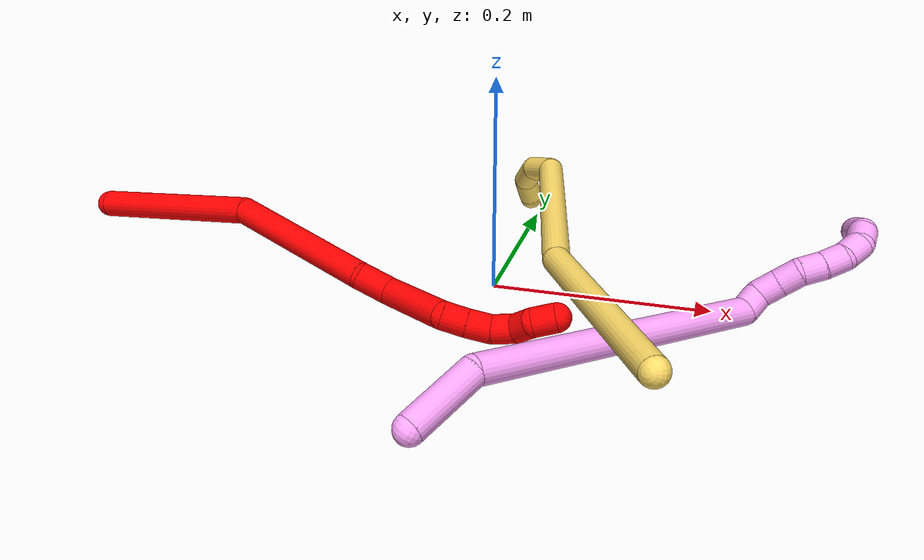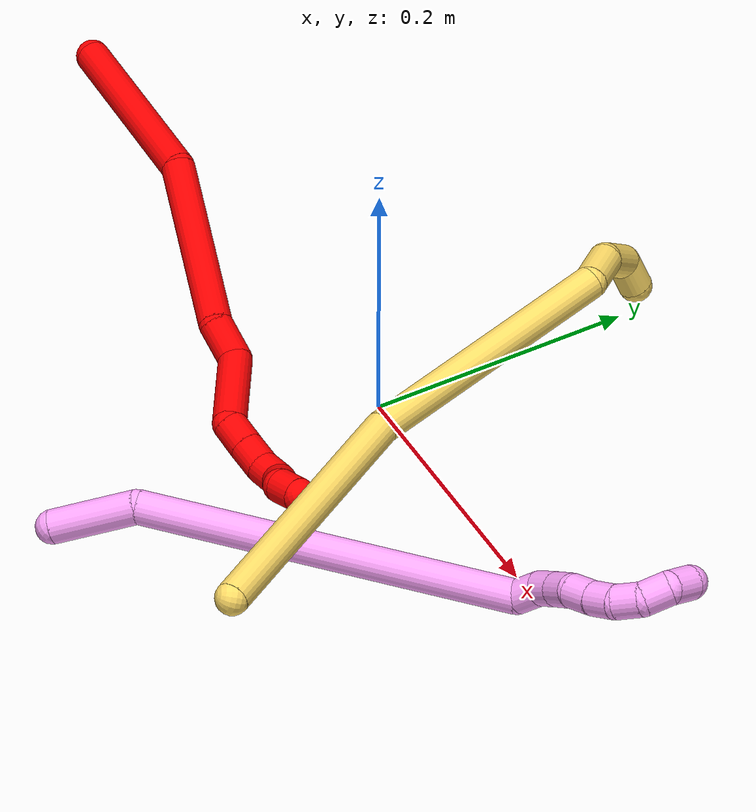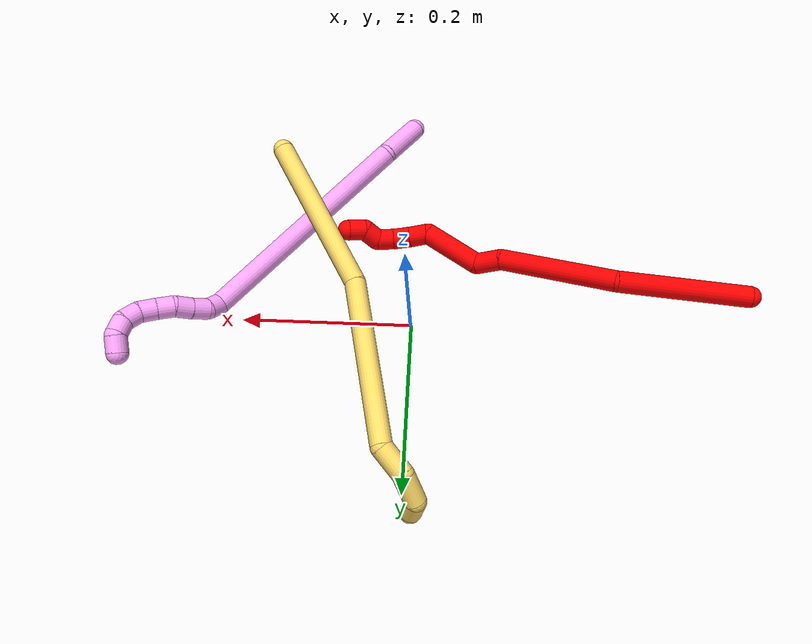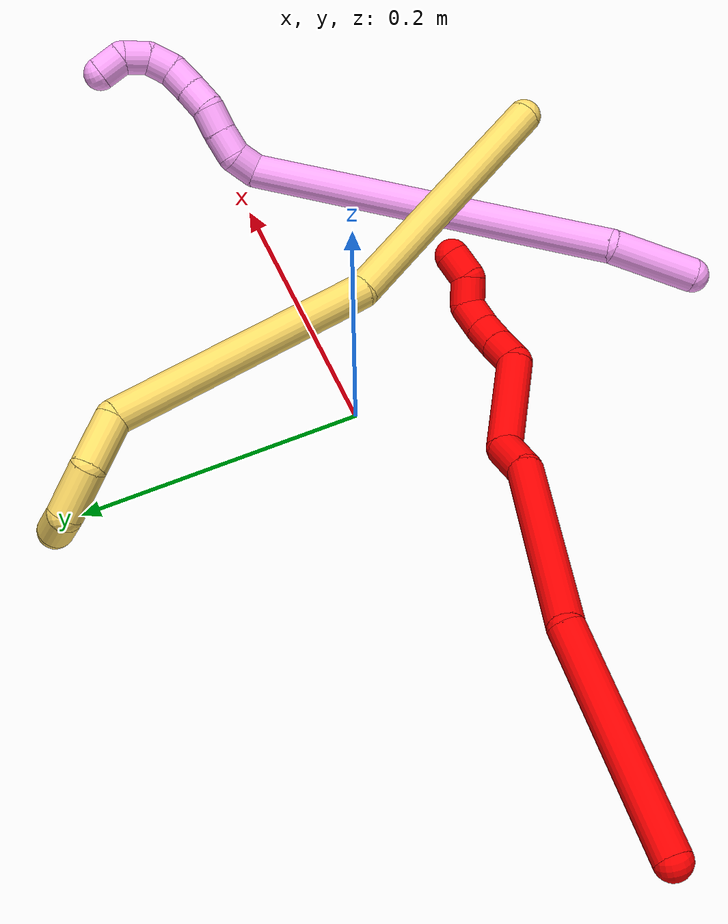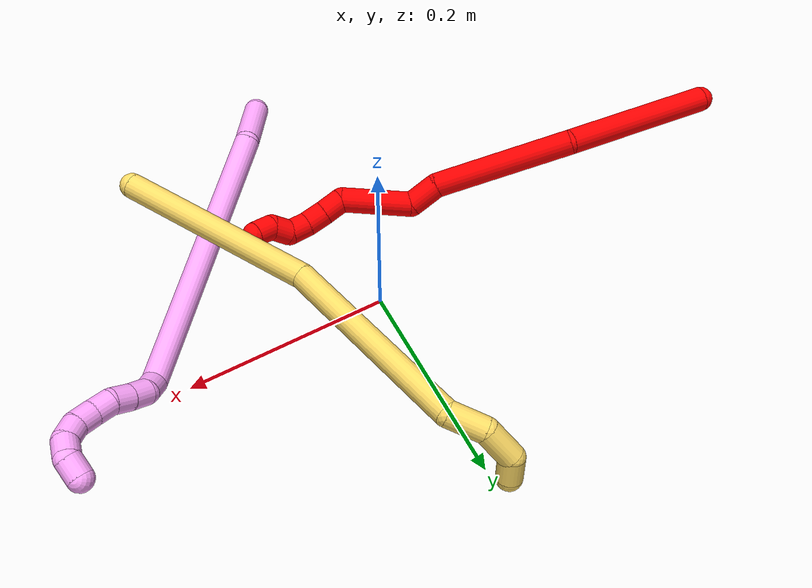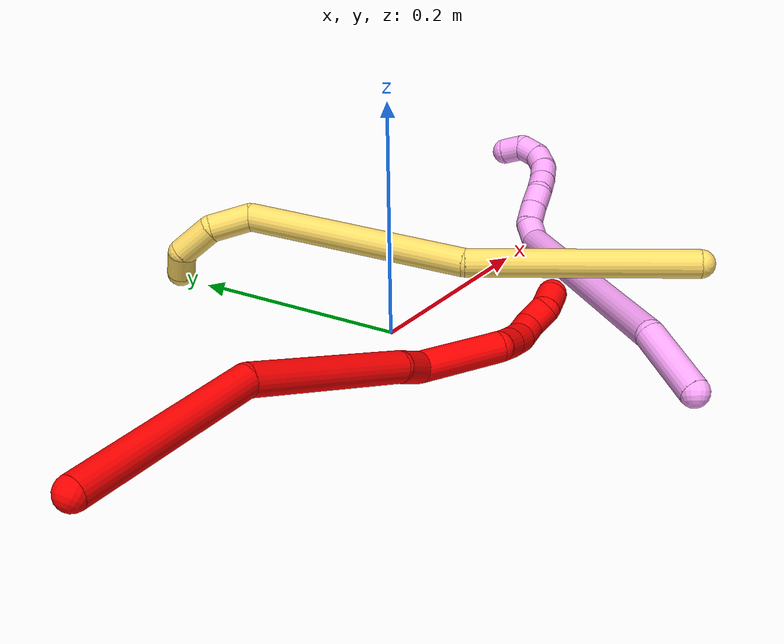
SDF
<sdf version="1.7">
 <world name="default">
  <model name="photoneo_s_sensor">
   <static>1</static>
   <pose>0 0 2 1.57079 1.57079 3.14159</pose>
   <link name="link">
    <inertial><mass>0.1</mass></inertial>
    <sensor name="sensor" type="depth">
     <update_rate>30</update_rate>
     <camera>
      <horizontal_fov>1.22</horizontal_fov>
      <image><width>1920</width><height>1200</height><format>B8G8R8</format></image>
      <clip><near>0.1</near><far>4</far></clip>
      <depth_camera><output>points</output></depth_camera>
     </camera>
     <plugin name="camera_plugin" filename="libgazebo_ros_depth_camera.so">
      <baseline>0.2</baseline>
      <alwaysOn>1</alwaysOn>
      <updateRate>0.0</updateRate>
      <cameraName>camera_ir</cameraName>
      <imageTopicName>/camera/color/image_raw</imageTopicName>
      <cameraInfoTopicName>/camera/color/camera_info</cameraInfoTopicName>
      <depthImageTopicName>/camera/depth/image_raw</depthImageTopicName>
      <depthImageCameraInfoTopicName>/camera/depth/camera_info</depthImageCameraInfoTopicName>
      <pointCloudTopicName>/camera/depth/points</pointCloudTopicName>
      <frameName>fr_optical</frameName>
      <pointCloudCutoff>0.1</pointCloudCutoff>
      <pointCloudCutoffMax>2.0</pointCloudCutoffMax>
      <distortionK1>0</distortionK1>
      <distortionK2>0</distortionK2>
      <distortionK3>0</distortionK3>
      <distortionT1>0</distortionT1>
      <distortionT2>0</distortionT2>
      <CxPrime>0</CxPrime>
      <Cx>0</Cx>
      <Cy>0</Cy>
      <focalLength>0</focalLength>
      <hackBaseline>0</hackBaseline>
     </plugin>
    </sensor>
   </link>
  </model>
  <model name="bin">
   <static>1</static>
   <link name="bottom">
    <collision name="collision-bottom">
     <pose>0 0 -0.01 0 -0 0</pose>
     <geometry><box><size>0.8 0.6 0.02</size></box></geometry>
     <surface>
      <friction><ode><mu>100</mu><mu2>100</mu2></ode></friction>
      <contact><collide_bitmask>65535</collide_bitmask></contact>
     </surface>
    </collision>
   </link>
   <link name="west_wall">
    <collision name="collision-west_wall">
     <pose>-0.41 0 0.1 0 -0 0</pose>
     <geometry><box><size>0.02 0.6 0.2</size></box></geometry>
     <surface>
      <friction><ode><mu>100</mu><mu2>100</mu2></ode></friction>
      <contact><collide_bitmask>65535</collide_bitmask></contact>
     </surface>
    </collision>
   </link>
   <link name="east_wall">
    <collision name="collision-east_wall">
     <pose>0.41 0 0.1 0 -0 0</pose>
     <geometry><box><size>0.02 0.6 0.2</size></box></geometry>
     <surface>
      <friction><ode><mu>100</mu><mu2>100</mu2></ode></friction>
      <contact><collide_bitmask>65535</collide_bitmask></contact>
     </surface>
    </collision>
   </link>
   <link name="south_wall">
    <collision name="collision-south_wall">
     <pose>0 -0.31 0.1 0 -0 0</pose>
     <geometry><box><size>0.8 0.02 0.2</size></box></geometry>
     <surface>
      <friction><ode><mu>100</mu><mu2>100</mu2></ode></friction>
      <contact><collide_bitmask>65535</collide_bitmask></contact>
     </surface>
    </collision>
   </link>
   <link name="north_wall">
    <collision name="collision-north_wall">
     <pose>0 0.31 0.1 0 -0 0</pose>
     <geometry><box><size>0.8 0.02 0.2</size></box></geometry>
     <surface>
      <friction><ode><mu>100</mu><mu2>100</mu2></ode></friction>
      <contact><collide_bitmask>65535</collide_bitmask></contact>
     </surface>
    </collision>
   </link>
  </model>
  <model name="2">
   <static>0</static>
   <link name="2">
    <collision name="collision-cylinder-e_1_1_4">
     <pose>0.048803 -0.020323 -0.056407 2.79577 0.683203 2.22836</pose>
     <geometry><cylinder><radius>0.0125</radius><length>0.154615</length></cylinder></geometry>
     <surface>
      <friction><ode><mu>1.16</mu><mu2>1.16</mu2><slip1>0</slip1><slip2>0</slip2></ode></friction>
      <contact><ode><kp>1e+06</kp><kd>1</kd><max_vel>0</max_vel><min_depth>0.001</min_depth></ode></contact>
     </surface>
    </collision>
    <visual name="visual-cylinder-e_1_1_4">
     <pose>0.048803 -0.020323 -0.056407 2.79577 0.683203 2.22836</pose>
     <geometry><cylinder><radius>0.0125</radius><length>0.154615</length></cylinder></geometry>
     <material><ambient>1 0 0 1</ambient></material>
    </visual>
    <collision name="collision-cylinder-e_2_4_5">
     <pose>0.159117 -0.049744 -0.144691 2.86361 1.07649 2.68129</pose>
     <geometry><cylinder><radius>0.0125</radius><length>0.139752</length></cylinder></geometry>
     <surface>
      <friction><ode><mu>1.16</mu><mu2>1.16</mu2><slip1>0</slip1><slip2>0</slip2></ode></friction>
      <contact><ode><kp>1e+06</kp><kd>1</kd><max_vel>0</max_vel><min_depth>0.001</min_depth></ode></contact>
     </surface>
    </collision>
    <visual name="visual-cylinder-e_2_4_5">
     <pose>0.159117 -0.049744 -0.144691 2.86361 1.07649 2.68129</pose>
     <geometry><cylinder><radius>0.0125</radius><length>0.139752</length></cylinder></geometry>
     <material><ambient>1 0 0 1</ambient></material>
    </visual>
    <collision name="collision-cylinder-e_3_5_6">
     <pose>0.233687 -0.065716 -0.181606 2.20304 0.992494 1.63636</pose>
     <geometry><cylinder><radius>0.0125</radius><length>0.031186</length></cylinder></geometry>
     <surface>
      <friction><ode><mu>1.16</mu><mu2>1.16</mu2><slip1>0</slip1><slip2>0</slip2></ode></friction>
      <contact><ode><kp>1e+06</kp><kd>1</kd><max_vel>0</max_vel><min_depth>0.001</min_depth></ode></contact>
     </surface>
    </collision>
    <visual name="visual-cylinder-e_3_5_6">
     <pose>0.233687 -0.065716 -0.181606 2.20304 0.992494 1.63636</pose>
     <geometry><cylinder><radius>0.0125</radius><length>0.031186</length></cylinder></geometry>
     <material><ambient>1 0 0 1</ambient></material>
    </visual>
    <collision name="collision-cylinder-e_4_6_7">
     <pose>0.273586 -0.06569 -0.20832 -2.83335 0.867744 -2.49454</pose>
     <geometry><cylinder><radius>0.0125</radius><length>0.070371</length></cylinder></geometry>
     <surface>
      <friction><ode><mu>1.16</mu><mu2>1.16</mu2><slip1>0</slip1><slip2>0</slip2></ode></friction>
      <contact><ode><kp>1e+06</kp><kd>1</kd><max_vel>0</max_vel><min_depth>0.001</min_depth></ode></contact>
     </surface>
    </collision>
    <visual name="visual-cylinder-e_4_6_7">
     <pose>0.273586 -0.06569 -0.20832 -2.83335 0.867744 -2.49454</pose>
     <geometry><cylinder><radius>0.0125</radius><length>0.070371</length></cylinder></geometry>
     <material><ambient>1 0 0 1</ambient></material>
    </visual>
    <collision name="collision-cylinder-e_5_7_8">
     <pose>0.308611 -0.064127 -0.235061 2.3299 0.838354 1.60708</pose>
     <geometry><cylinder><radius>0.0125</radius><length>0.022009</length></cylinder></geometry>
     <surface>
      <friction><ode><mu>1.16</mu><mu2>1.16</mu2><slip1>0</slip1><slip2>0</slip2></ode></friction>
      <contact><ode><kp>1e+06</kp><kd>1</kd><max_vel>0</max_vel><min_depth>0.001</min_depth></ode></contact>
     </surface>
    </collision>
    <visual name="visual-cylinder-e_5_7_8">
     <pose>0.308611 -0.064127 -0.235061 2.3299 0.838354 1.60708</pose>
     <geometry><cylinder><radius>0.0125</radius><length>0.022009</length></cylinder></geometry>
     <material><ambient>1 0 0 1</ambient></material>
    </visual>
    <collision name="collision-cylinder-e_6_8_9">
     <pose>0.324373 -0.07436 -0.245778 2.42779 0.792243 1.68535</pose>
     <geometry><cylinder><radius>0.0125</radius><length>0.021295</length></cylinder></geometry>
     <surface>
      <friction><ode><mu>1.16</mu><mu2>1.16</mu2><slip1>0</slip1><slip2>0</slip2></ode></friction>
      <contact><ode><kp>1e+06</kp><kd>1</kd><max_vel>0</max_vel><min_depth>0.001</min_depth></ode></contact>
     </surface>
    </collision>
    <visual name="visual-cylinder-e_6_8_9">
     <pose>0.324373 -0.07436 -0.245778 2.42779 0.792243 1.68535</pose>
     <geometry><cylinder><radius>0.0125</radius><length>0.021295</length></cylinder></geometry>
     <material><ambient>1 0 0 1</ambient></material>
    </visual>
    <collision name="collision-cylinder-e_7_9_10">
     <pose>0.33724 -0.083446 -0.25909 2.64108 0.544425 1.65874</pose>
     <geometry><cylinder><radius>0.0125</radius><length>0.020414</length></cylinder></geometry>
     <surface>
      <friction><ode><mu>1.16</mu><mu2>1.16</mu2><slip1>0</slip1><slip2>0</slip2></ode></friction>
      <contact><ode><kp>1e+06</kp><kd>1</kd><max_vel>0</max_vel><min_depth>0.001</min_depth></ode></contact>
     </surface>
    </collision>
    <visual name="visual-cylinder-e_7_9_10">
     <pose>0.33724 -0.083446 -0.25909 2.64108 0.544425 1.65874</pose>
     <geometry><cylinder><radius>0.0125</radius><length>0.020414</length></cylinder></geometry>
     <material><ambient>1 0 0 1</ambient></material>
    </visual>
    <collision name="collision-cylinder-e_8_10_11">
     <pose>0.345611 -0.085384 -0.276068 -2.90447 0.311377 -1.84321</pose>
     <geometry><cylinder><radius>0.0125</radius><length>0.02014</length></cylinder></geometry>
     <surface>
      <friction><ode><mu>1.16</mu><mu2>1.16</mu2><slip1>0</slip1><slip2>0</slip2></ode></friction>
      <contact><ode><kp>1e+06</kp><kd>1</kd><max_vel>0</max_vel><min_depth>0.001</min_depth></ode></contact>
     </surface>
    </collision>
    <visual name="visual-cylinder-e_8_10_11">
     <pose>0.345611 -0.085384 -0.276068 -2.90447 0.311377 -1.84321</pose>
     <geometry><cylinder><radius>0.0125</radius><length>0.02014</length></cylinder></geometry>
     <material><ambient>1 0 0 1</ambient></material>
    </visual>
    <collision name="collision-cylinder-e_9_11_2">
     <pose>0.352483 -0.087376 -0.293742 2.67168 0.38392 1.36391</pose>
     <geometry><cylinder><radius>0.0125</radius><length>0.020218</length></cylinder></geometry>
     <surface>
      <friction><ode><mu>1.16</mu><mu2>1.16</mu2><slip1>0</slip1><slip2>0</slip2></ode></friction>
      <contact><ode><kp>1e+06</kp><kd>1</kd><max_vel>0</max_vel><min_depth>0.001</min_depth></ode></contact>
     </surface>
    </collision>
    <visual name="visual-cylinder-e_9_11_2">
     <pose>0.352483 -0.087376 -0.293742 2.67168 0.38392 1.36391</pose>
     <geometry><cylinder><radius>0.0125</radius><length>0.020218</length></cylinder></geometry>
     <material><ambient>1 0 0 1</ambient></material>
    </visual>
    <collision name="collision-sphere-2">
     <pose>0.356269 -0.09162 -0.302099 0 -0 0</pose>
     <geometry><sphere><radius>0.0125</radius></sphere></geometry>
     <surface>
      <friction><ode><mu>1.16</mu><mu2>1.16</mu2><slip1>0</slip1><slip2>0</slip2></ode></friction>
      <contact><ode><kp>1e+06</kp><kd>1</kd><max_vel>0</max_vel><min_depth>0.001</min_depth></ode></contact>
     </surface>
    </collision>
    <visual name="visual-sphere-2">
     <pose>0.356269 -0.09162 -0.302099 0 -0 0</pose>
     <geometry><sphere><radius>0.0125</radius></sphere></geometry>
     <material><ambient>1 0 0 1</ambient></material>
    </visual>
    <collision name="collision-sphere-11">
     <pose>0.348697 -0.083132 -0.285385 0 -0 0</pose>
     <geometry><sphere><radius>0.0125</radius></sphere></geometry>
     <surface>
      <friction><ode><mu>1.16</mu><mu2>1.16</mu2><slip1>0</slip1><slip2>0</slip2></ode></friction>
      <contact><ode><kp>1e+06</kp><kd>1</kd><max_vel>0</max_vel><min_depth>0.001</min_depth></ode></contact>
     </surface>
    </collision>
    <visual name="visual-sphere-11">
     <pose>0.348697 -0.083132 -0.285385 0 -0 0</pose>
     <geometry><sphere><radius>0.0125</radius></sphere></geometry>
     <material><ambient>1 0 0 1</ambient></material>
    </visual>
    <collision name="collision-sphere-10">
     <pose>0.342526 -0.087636 -0.26675 0 -0 0</pose>
     <geometry><sphere><radius>0.0125</radius></sphere></geometry>
     <surface>
      <friction><ode><mu>1.16</mu><mu2>1.16</mu2><slip1>0</slip1><slip2>0</slip2></ode></friction>
      <contact><ode><kp>1e+06</kp><kd>1</kd><max_vel>0</max_vel><min_depth>0.001</min_depth></ode></contact>
     </surface>
    </collision>
    <visual name="visual-sphere-10">
     <pose>0.342526 -0.087636 -0.26675 0 -0 0</pose>
     <geometry><sphere><radius>0.0125</radius></sphere></geometry>
     <material><ambient>1 0 0 1</ambient></material>
    </visual>
    <collision name="collision-sphere-9">
     <pose>0.331953 -0.079256 -0.251429 0 -0 0</pose>
     <geometry><sphere><radius>0.0125</radius></sphere></geometry>
     <surface>
      <friction><ode><mu>1.16</mu><mu2>1.16</mu2><slip1>0</slip1><slip2>0</slip2></ode></friction>
      <contact><ode><kp>1e+06</kp><kd>1</kd><max_vel>0</max_vel><min_depth>0.001</min_depth></ode></contact>
     </surface>
    </collision>
    <visual name="visual-sphere-9">
     <pose>0.331953 -0.079256 -0.251429 0 -0 0</pose>
     <geometry><sphere><radius>0.0125</radius></sphere></geometry>
     <material><ambient>1 0 0 1</ambient></material>
    </visual>
    <collision name="collision-sphere-4">
     <pose>0.097605 -0.040647 -0.112813 0 -0 0</pose>
     <geometry><sphere><radius>0.0125</radius></sphere></geometry>
     <surface>
      <friction><ode><mu>1.16</mu><mu2>1.16</mu2><slip1>0</slip1><slip2>0</slip2></ode></friction>
      <contact><ode><kp>1e+06</kp><kd>1</kd><max_vel>0</max_vel><min_depth>0.001</min_depth></ode></contact>
     </surface>
    </collision>
    <visual name="visual-sphere-4">
     <pose>0.097605 -0.040647 -0.112813 0 -0 0</pose>
     <geometry><sphere><radius>0.0125</radius></sphere></geometry>
     <material><ambient>1 0 0 1</ambient></material>
    </visual>
    <collision name="collision-sphere-1">
     <geometry><sphere><radius>0.0125</radius></sphere></geometry>
     <surface>
      <friction><ode><mu>1.16</mu><mu2>1.16</mu2><slip1>0</slip1><slip2>0</slip2></ode></friction>
      <contact><ode><kp>1e+06</kp><kd>1</kd><max_vel>0</max_vel><min_depth>0.001</min_depth></ode></contact>
     </surface>
    </collision>
    <visual name="visual-sphere-1">
     <geometry><sphere><radius>0.0125</radius></sphere></geometry>
     <material><ambient>1 0 0 1</ambient></material>
    </visual>
    <collision name="collision-sphere-8">
     <pose>0.316793 -0.069465 -0.240126 0 -0 0</pose>
     <geometry><sphere><radius>0.0125</radius></sphere></geometry>
     <surface>
      <friction><ode><mu>1.16</mu><mu2>1.16</mu2><slip1>0</slip1><slip2>0</slip2></ode></friction>
      <contact><ode><kp>1e+06</kp><kd>1</kd><max_vel>0</max_vel><min_depth>0.001</min_depth></ode></contact>
     </surface>
    </collision>
    <visual name="visual-sphere-8">
     <pose>0.316793 -0.069465 -0.240126 0 -0 0</pose>
     <geometry><sphere><radius>0.0125</radius></sphere></geometry>
     <material><ambient>1 0 0 1</ambient></material>
    </visual>
    <collision name="collision-sphere-5">
     <pose>0.220629 -0.058841 -0.176569 0 -0 0</pose>
     <geometry><sphere><radius>0.0125</radius></sphere></geometry>
     <surface>
      <friction><ode><mu>1.16</mu><mu2>1.16</mu2><slip1>0</slip1><slip2>0</slip2></ode></friction>
      <contact><ode><kp>1e+06</kp><kd>1</kd><max_vel>0</max_vel><min_depth>0.001</min_depth></ode></contact>
     </surface>
    </collision>
    <visual name="visual-sphere-5">
     <pose>0.220629 -0.058841 -0.176569 0 -0 0</pose>
     <geometry><sphere><radius>0.0125</radius></sphere></geometry>
     <material><ambient>1 0 0 1</ambient></material>
    </visual>
    <collision name="collision-sphere-6">
     <pose>0.246744 -0.072592 -0.186642 0 -0 0</pose>
     <geometry><sphere><radius>0.0125</radius></sphere></geometry>
     <surface>
      <friction><ode><mu>1.16</mu><mu2>1.16</mu2><slip1>0</slip1><slip2>0</slip2></ode></friction>
      <contact><ode><kp>1e+06</kp><kd>1</kd><max_vel>0</max_vel><min_depth>0.001</min_depth></ode></contact>
     </surface>
    </collision>
    <visual name="visual-sphere-6">
     <pose>0.246744 -0.072592 -0.186642 0 -0 0</pose>
     <geometry><sphere><radius>0.0125</radius></sphere></geometry>
     <material><ambient>1 0 0 1</ambient></material>
    </visual>
    <collision name="collision-sphere-7">
     <pose>0.300429 -0.058789 -0.229997 0 -0 0</pose>
     <geometry><sphere><radius>0.0125</radius></sphere></geometry>
     <surface>
      <friction><ode><mu>1.16</mu><mu2>1.16</mu2><slip1>0</slip1><slip2>0</slip2></ode></friction>
      <contact><ode><kp>1e+06</kp><kd>1</kd><max_vel>0</max_vel><min_depth>0.001</min_depth></ode></contact>
     </surface>
    </collision>
    <visual name="visual-sphere-7">
     <pose>0.300429 -0.058789 -0.229997 0 -0 0</pose>
     <geometry><sphere><radius>0.0125</radius></sphere></geometry>
     <material><ambient>1 0 0 1</ambient></material>
    </visual>
    <inertial>
     <pose>0.181988 -0.049902 -0.152921 0 -0 0</pose>
     <mass>0.5</mass>
     <inertia>
      <ixx>-2e-06</ixx>
      <ixy>0</ixy>
      <ixz>0</ixz>
      <iyy>0.000721</iyy>
      <iyz>0</iyz>
      <izz>-0.000348</izz>
     </inertia>
    </inertial>
   </link>
   <pose>-0.388502 -0.030175 0.054677 2.78309 0.669462 -0.582977</pose>
  </model>
  <model name="4">
   <static>0</static>
   <link name="4">
    <collision name="collision-cylinder-e_1_1_4">
     <pose>0.018505 0.010625 -0.024179 -2.72757 0.611178 -1.96688</pose>
     <geometry><cylinder><radius>0.0125</radius><length>0.064497</length></cylinder></geometry>
     <surface>
      <friction><ode><mu>1.16</mu><mu2>1.16</mu2><slip1>0</slip1><slip2>0</slip2></ode></friction>
      <contact><ode><kp>1e+06</kp><kd>1</kd><max_vel>0</max_vel><min_depth>0.001</min_depth></ode></contact>
     </surface>
    </collision>
    <visual name="visual-cylinder-e_1_1_4">
     <pose>0.018505 0.010625 -0.024179 -2.72757 0.611178 -1.96688</pose>
     <geometry><cylinder><radius>0.0125</radius><length>0.064497</length></cylinder></geometry>
     <material><ambient>1 0.65098 0.996078 1</ambient></material>
    </visual>
    <collision name="collision-cylinder-e_2_4_5">
     <pose>0.113623 0.117434 -0.110423 -2.14384 0.589811 -1.0172</pose>
     <geometry><cylinder><radius>0.0125</radius><length>0.275484</length></cylinder></geometry>
     <surface>
      <friction><ode><mu>1.16</mu><mu2>1.16</mu2><slip1>0</slip1><slip2>0</slip2></ode></friction>
      <contact><ode><kp>1e+06</kp><kd>1</kd><max_vel>0</max_vel><min_depth>0.001</min_depth></ode></contact>
     </surface>
    </collision>
    <visual name="visual-cylinder-e_2_4_5">
     <pose>0.113623 0.117434 -0.110423 -2.14384 0.589811 -1.0172</pose>
     <geometry><cylinder><radius>0.0125</radius><length>0.275484</length></cylinder></geometry>
     <material><ambient>1 0.65098 0.996078 1</ambient></material>
    </visual>
    <collision name="collision-cylinder-e_3_5_6">
     <pose>0.193678 0.215828 -0.181613 -2.904 0.351362 -1.95766</pose>
     <geometry><cylinder><radius>0.0125</radius><length>0.020002</length></cylinder></geometry>
     <surface>
      <friction><ode><mu>1.16</mu><mu2>1.16</mu2><slip1>0</slip1><slip2>0</slip2></ode></friction>
      <contact><ode><kp>1e+06</kp><kd>1</kd><max_vel>0</max_vel><min_depth>0.001</min_depth></ode></contact>
     </surface>
    </collision>
    <visual name="visual-cylinder-e_3_5_6">
     <pose>0.193678 0.215828 -0.181613 -2.904 0.351362 -1.95766</pose>
     <geometry><cylinder><radius>0.0125</radius><length>0.020002</length></cylinder></geometry>
     <material><ambient>1 0.65098 0.996078 1</ambient></material>
    </visual>
    <collision name="collision-cylinder-e_4_6_7">
     <pose>0.196143 0.222551 -0.199615 -2.67118 -0.097817 0.402965</pose>
     <geometry><cylinder><radius>0.0125</radius><length>0.02001</length></cylinder></geometry>
     <surface>
      <friction><ode><mu>1.16</mu><mu2>1.16</mu2><slip1>0</slip1><slip2>0</slip2></ode></friction>
      <contact><ode><kp>1e+06</kp><kd>1</kd><max_vel>0</max_vel><min_depth>0.001</min_depth></ode></contact>
     </surface>
    </collision>
    <visual name="visual-cylinder-e_4_6_7">
     <pose>0.196143 0.222551 -0.199615 -2.67118 -0.097817 0.402965</pose>
     <geometry><cylinder><radius>0.0125</radius><length>0.02001</length></cylinder></geometry>
     <material><ambient>1 0.65098 0.996078 1</ambient></material>
    </visual>
    <collision name="collision-cylinder-e_5_7_8">
     <pose>0.19338 0.231393 -0.217328 -2.68609 -0.179598 0.741089</pose>
     <geometry><cylinder><radius>0.0125</radius><length>0.020003</length></cylinder></geometry>
     <surface>
      <friction><ode><mu>1.16</mu><mu2>1.16</mu2><slip1>0</slip1><slip2>0</slip2></ode></friction>
      <contact><ode><kp>1e+06</kp><kd>1</kd><max_vel>0</max_vel><min_depth>0.001</min_depth></ode></contact>
     </surface>
    </collision>
    <visual name="visual-cylinder-e_5_7_8">
     <pose>0.19338 0.231393 -0.217328 -2.68609 -0.179598 0.741089</pose>
     <geometry><cylinder><radius>0.0125</radius><length>0.020003</length></cylinder></geometry>
     <material><ambient>1 0.65098 0.996078 1</ambient></material>
    </visual>
    <collision name="collision-cylinder-e_6_8_9">
     <pose>0.191903 0.242544 -0.23347 -2.39044 0.030965 -0.078498</pose>
     <geometry><cylinder><radius>0.0125</radius><length>0.02</length></cylinder></geometry>
     <surface>
      <friction><ode><mu>1.16</mu><mu2>1.16</mu2><slip1>0</slip1><slip2>0</slip2></ode></friction>
      <contact><ode><kp>1e+06</kp><kd>1</kd><max_vel>0</max_vel><min_depth>0.001</min_depth></ode></contact>
     </surface>
    </collision>
    <visual name="visual-cylinder-e_6_8_9">
     <pose>0.191903 0.242544 -0.23347 -2.39044 0.030965 -0.078498</pose>
     <geometry><cylinder><radius>0.0125</radius><length>0.02</length></cylinder></geometry>
     <material><ambient>1 0.65098 0.996078 1</ambient></material>
    </visual>
    <collision name="collision-cylinder-e_7_9_10">
     <pose>0.193166 0.255282 -0.248783 -2.5052 0.095501 -0.288145</pose>
     <geometry><cylinder><radius>0.0125</radius><length>0.020004</length></cylinder></geometry>
     <surface>
      <friction><ode><mu>1.16</mu><mu2>1.16</mu2><slip1>0</slip1><slip2>0</slip2></ode></friction>
      <contact><ode><kp>1e+06</kp><kd>1</kd><max_vel>0</max_vel><min_depth>0.001</min_depth></ode></contact>
     </surface>
    </collision>
    <visual name="visual-cylinder-e_7_9_10">
     <pose>0.193166 0.255282 -0.248783 -2.5052 0.095501 -0.288145</pose>
     <geometry><cylinder><radius>0.0125</radius><length>0.020004</length></cylinder></geometry>
     <material><ambient>1 0.65098 0.996078 1</ambient></material>
    </visual>
    <collision name="collision-cylinder-e_8_10_11">
     <pose>0.198569 0.265582 -0.264601 -2.63029 0.461134 -1.46354</pose>
     <geometry><cylinder><radius>0.0125</radius><length>0.02</length></cylinder></geometry>
     <surface>
      <friction><ode><mu>1.16</mu><mu2>1.16</mu2><slip1>0</slip1><slip2>0</slip2></ode></friction>
      <contact><ode><kp>1e+06</kp><kd>1</kd><max_vel>0</max_vel><min_depth>0.001</min_depth></ode></contact>
     </surface>
    </collision>
    <visual name="visual-cylinder-e_8_10_11">
     <pose>0.198569 0.265582 -0.264601 -2.63029 0.461134 -1.46354</pose>
     <geometry><cylinder><radius>0.0125</radius><length>0.02</length></cylinder></geometry>
     <material><ambient>1 0.65098 0.996078 1</ambient></material>
    </visual>
    <collision name="collision-cylinder-e_9_11_12">
     <pose>0.211182 0.271181 -0.278057 -2.92927 0.955019 -2.7354</pose>
     <geometry><cylinder><radius>0.0125</radius><length>0.02</length></cylinder></geometry>
     <surface>
      <friction><ode><mu>1.16</mu><mu2>1.16</mu2><slip1>0</slip1><slip2>0</slip2></ode></friction>
      <contact><ode><kp>1e+06</kp><kd>1</kd><max_vel>0</max_vel><min_depth>0.001</min_depth></ode></contact>
     </surface>
    </collision>
    <visual name="visual-cylinder-e_9_11_12">
     <pose>0.211182 0.271181 -0.278057 -2.92927 0.955019 -2.7354</pose>
     <geometry><cylinder><radius>0.0125</radius><length>0.02</length></cylinder></geometry>
     <material><ambient>1 0.65098 0.996078 1</ambient></material>
    </visual>
    <collision name="collision-cylinder-e_10_12_2">
     <pose>0.229264 0.273511 -0.283079 -1.05917 1.4428 -0.950912</pose>
     <geometry><cylinder><radius>0.0125</radius><length>0.02</length></cylinder></geometry>
     <surface>
      <friction><ode><mu>1.16</mu><mu2>1.16</mu2><slip1>0</slip1><slip2>0</slip2></ode></friction>
      <contact><ode><kp>1e+06</kp><kd>1</kd><max_vel>0</max_vel><min_depth>0.001</min_depth></ode></contact>
     </surface>
    </collision>
    <visual name="visual-cylinder-e_10_12_2">
     <pose>0.229264 0.273511 -0.283079 -1.05917 1.4428 -0.950912</pose>
     <geometry><cylinder><radius>0.0125</radius><length>0.02</length></cylinder></geometry>
     <material><ambient>1 0.65098 0.996078 1</ambient></material>
    </visual>
    <collision name="collision-sphere-2">
     <pose>0.239182 0.274624 -0.282454 0 -0 0</pose>
     <geometry><sphere><radius>0.0125</radius></sphere></geometry>
     <surface>
      <friction><ode><mu>1.16</mu><mu2>1.16</mu2><slip1>0</slip1><slip2>0</slip2></ode></friction>
      <contact><ode><kp>1e+06</kp><kd>1</kd><max_vel>0</max_vel><min_depth>0.001</min_depth></ode></contact>
     </surface>
    </collision>
    <visual name="visual-sphere-2">
     <pose>0.239182 0.274624 -0.282454 0 -0 0</pose>
     <geometry><sphere><radius>0.0125</radius></sphere></geometry>
     <material><ambient>1 0.65098 0.996078 1</ambient></material>
    </visual>
    <collision name="collision-sphere-12">
     <pose>0.219346 0.272398 -0.283703 0 -0 0</pose>
     <geometry><sphere><radius>0.0125</radius></sphere></geometry>
     <surface>
      <friction><ode><mu>1.16</mu><mu2>1.16</mu2><slip1>0</slip1><slip2>0</slip2></ode></friction>
      <contact><ode><kp>1e+06</kp><kd>1</kd><max_vel>0</max_vel><min_depth>0.001</min_depth></ode></contact>
     </surface>
    </collision>
    <visual name="visual-sphere-12">
     <pose>0.219346 0.272398 -0.283703 0 -0 0</pose>
     <geometry><sphere><radius>0.0125</radius></sphere></geometry>
     <material><ambient>1 0.65098 0.996078 1</ambient></material>
    </visual>
    <collision name="collision-sphere-11">
     <pose>0.203019 0.269964 -0.272411 0 -0 0</pose>
     <geometry><sphere><radius>0.0125</radius></sphere></geometry>
     <surface>
      <friction><ode><mu>1.16</mu><mu2>1.16</mu2><slip1>0</slip1><slip2>0</slip2></ode></friction>
      <contact><ode><kp>1e+06</kp><kd>1</kd><max_vel>0</max_vel><min_depth>0.001</min_depth></ode></contact>
     </surface>
    </collision>
    <visual name="visual-sphere-11">
     <pose>0.203019 0.269964 -0.272411 0 -0 0</pose>
     <geometry><sphere><radius>0.0125</radius></sphere></geometry>
     <material><ambient>1 0.65098 0.996078 1</ambient></material>
    </visual>
    <collision name="collision-sphere-10">
     <pose>0.19412 0.261199 -0.256791 0 -0 0</pose>
     <geometry><sphere><radius>0.0125</radius></sphere></geometry>
     <surface>
      <friction><ode><mu>1.16</mu><mu2>1.16</mu2><slip1>0</slip1><slip2>0</slip2></ode></friction>
      <contact><ode><kp>1e+06</kp><kd>1</kd><max_vel>0</max_vel><min_depth>0.001</min_depth></ode></contact>
     </surface>
    </collision>
    <visual name="visual-sphere-10">
     <pose>0.19412 0.261199 -0.256791 0 -0 0</pose>
     <geometry><sphere><radius>0.0125</radius></sphere></geometry>
     <material><ambient>1 0.65098 0.996078 1</ambient></material>
    </visual>
    <collision name="collision-sphere-9">
     <pose>0.192212 0.249366 -0.240776 0 -0 0</pose>
     <geometry><sphere><radius>0.0125</radius></sphere></geometry>
     <surface>
      <friction><ode><mu>1.16</mu><mu2>1.16</mu2><slip1>0</slip1><slip2>0</slip2></ode></friction>
      <contact><ode><kp>1e+06</kp><kd>1</kd><max_vel>0</max_vel><min_depth>0.001</min_depth></ode></contact>
     </surface>
    </collision>
    <visual name="visual-sphere-9">
     <pose>0.192212 0.249366 -0.240776 0 -0 0</pose>
     <geometry><sphere><radius>0.0125</radius></sphere></geometry>
     <material><ambient>1 0.65098 0.996078 1</ambient></material>
    </visual>
    <collision name="collision-sphere-4">
     <pose>0.037011 0.02125 -0.048359 0 -0 0</pose>
     <geometry><sphere><radius>0.0125</radius></sphere></geometry>
     <surface>
      <friction><ode><mu>1.16</mu><mu2>1.16</mu2><slip1>0</slip1><slip2>0</slip2></ode></friction>
      <contact><ode><kp>1e+06</kp><kd>1</kd><max_vel>0</max_vel><min_depth>0.001</min_depth></ode></contact>
     </surface>
    </collision>
    <visual name="visual-sphere-4">
     <pose>0.037011 0.02125 -0.048359 0 -0 0</pose>
     <geometry><sphere><radius>0.0125</radius></sphere></geometry>
     <material><ambient>1 0.65098 0.996078 1</ambient></material>
    </visual>
    <collision name="collision-sphere-1">
     <geometry><sphere><radius>0.0125</radius></sphere></geometry>
     <surface>
      <friction><ode><mu>1.16</mu><mu2>1.16</mu2><slip1>0</slip1><slip2>0</slip2></ode></friction>
      <contact><ode><kp>1e+06</kp><kd>1</kd><max_vel>0</max_vel><min_depth>0.001</min_depth></ode></contact>
     </surface>
    </collision>
    <visual name="visual-sphere-1">
     <geometry><sphere><radius>0.0125</radius></sphere></geometry>
     <material><ambient>1 0.65098 0.996078 1</ambient></material>
    </visual>
    <collision name="collision-sphere-8">
     <pose>0.191593 0.235722 -0.226165 0 -0 0</pose>
     <geometry><sphere><radius>0.0125</radius></sphere></geometry>
     <surface>
      <friction><ode><mu>1.16</mu><mu2>1.16</mu2><slip1>0</slip1><slip2>0</slip2></ode></friction>
      <contact><ode><kp>1e+06</kp><kd>1</kd><max_vel>0</max_vel><min_depth>0.001</min_depth></ode></contact>
     </surface>
    </collision>
    <visual name="visual-sphere-8">
     <pose>0.191593 0.235722 -0.226165 0 -0 0</pose>
     <geometry><sphere><radius>0.0125</radius></sphere></geometry>
     <material><ambient>1 0.65098 0.996078 1</ambient></material>
    </visual>
    <collision name="collision-sphere-5">
     <pose>0.190236 0.213618 -0.172487 0 -0 0</pose>
     <geometry><sphere><radius>0.0125</radius></sphere></geometry>
     <surface>
      <friction><ode><mu>1.16</mu><mu2>1.16</mu2><slip1>0</slip1><slip2>0</slip2></ode></friction>
      <contact><ode><kp>1e+06</kp><kd>1</kd><max_vel>0</max_vel><min_depth>0.001</min_depth></ode></contact>
     </surface>
    </collision>
    <visual name="visual-sphere-5">
     <pose>0.190236 0.213618 -0.172487 0 -0 0</pose>
     <geometry><sphere><radius>0.0125</radius></sphere></geometry>
     <material><ambient>1 0.65098 0.996078 1</ambient></material>
    </visual>
    <collision name="collision-sphere-6">
     <pose>0.19712 0.218038 -0.19074 0 -0 0</pose>
     <geometry><sphere><radius>0.0125</radius></sphere></geometry>
     <surface>
      <friction><ode><mu>1.16</mu><mu2>1.16</mu2><slip1>0</slip1><slip2>0</slip2></ode></friction>
      <contact><ode><kp>1e+06</kp><kd>1</kd><max_vel>0</max_vel><min_depth>0.001</min_depth></ode></contact>
     </surface>
    </collision>
    <visual name="visual-sphere-6">
     <pose>0.19712 0.218038 -0.19074 0 -0 0</pose>
     <geometry><sphere><radius>0.0125</radius></sphere></geometry>
     <material><ambient>1 0.65098 0.996078 1</ambient></material>
    </visual>
    <collision name="collision-sphere-7">
     <pose>0.195166 0.227064 -0.208491 0 -0 0</pose>
     <geometry><sphere><radius>0.0125</radius></sphere></geometry>
     <surface>
      <friction><ode><mu>1.16</mu><mu2>1.16</mu2><slip1>0</slip1><slip2>0</slip2></ode></friction>
      <contact><ode><kp>1e+06</kp><kd>1</kd><max_vel>0</max_vel><min_depth>0.001</min_depth></ode></contact>
     </surface>
    </collision>
    <visual name="visual-sphere-7">
     <pose>0.195166 0.227064 -0.208491 0 -0 0</pose>
     <geometry><sphere><radius>0.0125</radius></sphere></geometry>
     <material><ambient>1 0.65098 0.996078 1</ambient></material>
    </visual>
    <inertial>
     <pose>0.129289 0.145196 -0.140228 0 -0 0</pose>
     <mass>0.5</mass>
     <inertia>
      <ixx>-0.000479</ixx>
      <ixy>0</ixy>
      <ixz>0</ixz>
      <iyy>-0.001028</iyy>
      <iyz>0</iyz>
      <izz>-0.002252</izz>
     </inertia>
    </inertial>
   </link>
   <pose>0.008119 -0.267535 0.011496 -2.6126 0.21282 1.80316</pose>
  </model>
  <model name="5">
   <static>0</static>
   <link name="5">
    <collision name="collision-cylinder-e_1_1_4">
     <pose>0.005634 0.082548 -0.057459 -2.17888 0.055954 -0.107049</pose>
     <geometry><cylinder><radius>0.0125</radius><length>0.201469</length></cylinder></geometry>
     <surface>
      <friction><ode><mu>1.16</mu><mu2>1.16</mu2><slip1>0</slip1><slip2>0</slip2></ode></friction>
      <contact><ode><kp>1e+06</kp><kd>1</kd><max_vel>0</max_vel><min_depth>0.001</min_depth></ode></contact>
     </surface>
    </collision>
    <visual name="visual-cylinder-e_1_1_4">
     <pose>0.005634 0.082548 -0.057459 -2.17888 0.055954 -0.107049</pose>
     <geometry><cylinder><radius>0.0125</radius><length>0.201469</length></cylinder></geometry>
     <material><ambient>1 0.858824 0.4 1</ambient></material>
    </visual>
    <collision name="collision-cylinder-e_2_4_5">
     <pose>0.03609 0.228361 -0.189292 -2.43672 0.248951 -0.655834</pose>
     <geometry><cylinder><radius>0.0125</radius><length>0.201496</length></cylinder></geometry>
     <surface>
      <friction><ode><mu>1.16</mu><mu2>1.16</mu2><slip1>0</slip1><slip2>0</slip2></ode></friction>
      <contact><ode><kp>1e+06</kp><kd>1</kd><max_vel>0</max_vel><min_depth>0.001</min_depth></ode></contact>
     </surface>
    </collision>
    <visual name="visual-cylinder-e_2_4_5">
     <pose>0.03609 0.228361 -0.189292 -2.43672 0.248951 -0.655834</pose>
     <geometry><cylinder><radius>0.0125</radius><length>0.201496</length></cylinder></geometry>
     <material><ambient>1 0.858824 0.4 1</ambient></material>
    </visual>
    <collision name="collision-cylinder-e_3_5_6">
     <pose>0.056582 0.307415 -0.272195 -2.06617 -0.23685 0.393878</pose>
     <geometry><cylinder><radius>0.0125</radius><length>0.036921</length></cylinder></geometry>
     <surface>
      <friction><ode><mu>1.16</mu><mu2>1.16</mu2><slip1>0</slip1><slip2>0</slip2></ode></friction>
      <contact><ode><kp>1e+06</kp><kd>1</kd><max_vel>0</max_vel><min_depth>0.001</min_depth></ode></contact>
     </surface>
    </collision>
    <visual name="visual-cylinder-e_3_5_6">
     <pose>0.056582 0.307415 -0.272195 -2.06617 -0.23685 0.393878</pose>
     <geometry><cylinder><radius>0.0125</radius><length>0.036921</length></cylinder></geometry>
     <material><ambient>1 0.858824 0.4 1</ambient></material>
    </visual>
    <collision name="collision-cylinder-e_4_6_7">
     <pose>0.042348 0.33254 -0.29222 -2.45936 -0.589386 1.41482</pose>
     <geometry><cylinder><radius>0.0125</radius><length>0.035629</length></cylinder></geometry>
     <surface>
      <friction><ode><mu>1.16</mu><mu2>1.16</mu2><slip1>0</slip1><slip2>0</slip2></ode></friction>
      <contact><ode><kp>1e+06</kp><kd>1</kd><max_vel>0</max_vel><min_depth>0.001</min_depth></ode></contact>
     </surface>
    </collision>
    <visual name="visual-cylinder-e_4_6_7">
     <pose>0.042348 0.33254 -0.29222 -2.45936 -0.589386 1.41482</pose>
     <geometry><cylinder><radius>0.0125</radius><length>0.035629</length></cylinder></geometry>
     <material><ambient>1 0.858824 0.4 1</ambient></material>
    </visual>
    <collision name="collision-cylinder-e_5_7_2">
     <pose>0.02355 0.339383 -0.311747 2.84049 -0.813361 -2.46427</pose>
     <geometry><cylinder><radius>0.0125</radius><length>0.024486</length></cylinder></geometry>
     <surface>
      <friction><ode><mu>1.16</mu><mu2>1.16</mu2><slip1>0</slip1><slip2>0</slip2></ode></friction>
      <contact><ode><kp>1e+06</kp><kd>1</kd><max_vel>0</max_vel><min_depth>0.001</min_depth></ode></contact>
     </surface>
    </collision>
    <visual name="visual-cylinder-e_5_7_2">
     <pose>0.02355 0.339383 -0.311747 2.84049 -0.813361 -2.46427</pose>
     <geometry><cylinder><radius>0.0125</radius><length>0.024486</length></cylinder></geometry>
     <material><ambient>1 0.858824 0.4 1</ambient></material>
    </visual>
    <collision name="collision-sphere-2">
     <pose>0.014654 0.336888 -0.31978 0 -0 0</pose>
     <geometry><sphere><radius>0.0125</radius></sphere></geometry>
     <surface>
      <friction><ode><mu>1.16</mu><mu2>1.16</mu2><slip1>0</slip1><slip2>0</slip2></ode></friction>
      <contact><ode><kp>1e+06</kp><kd>1</kd><max_vel>0</max_vel><min_depth>0.001</min_depth></ode></contact>
     </surface>
    </collision>
    <visual name="visual-sphere-2">
     <pose>0.014654 0.336888 -0.31978 0 -0 0</pose>
     <geometry><sphere><radius>0.0125</radius></sphere></geometry>
     <material><ambient>1 0.858824 0.4 1</ambient></material>
    </visual>
    <collision name="collision-sphere-7">
     <pose>0.032445 0.341877 -0.303714 0 -0 0</pose>
     <geometry><sphere><radius>0.0125</radius></sphere></geometry>
     <surface>
      <friction><ode><mu>1.16</mu><mu2>1.16</mu2><slip1>0</slip1><slip2>0</slip2></ode></friction>
      <contact><ode><kp>1e+06</kp><kd>1</kd><max_vel>0</max_vel><min_depth>0.001</min_depth></ode></contact>
     </surface>
    </collision>
    <visual name="visual-sphere-7">
     <pose>0.032445 0.341877 -0.303714 0 -0 0</pose>
     <geometry><sphere><radius>0.0125</radius></sphere></geometry>
     <material><ambient>1 0.858824 0.4 1</ambient></material>
    </visual>
    <collision name="collision-sphere-6">
     <pose>0.05225 0.323202 -0.280726 0 -0 0</pose>
     <geometry><sphere><radius>0.0125</radius></sphere></geometry>
     <surface>
      <friction><ode><mu>1.16</mu><mu2>1.16</mu2><slip1>0</slip1><slip2>0</slip2></ode></friction>
      <contact><ode><kp>1e+06</kp><kd>1</kd><max_vel>0</max_vel><min_depth>0.001</min_depth></ode></contact>
     </surface>
    </collision>
    <visual name="visual-sphere-6">
     <pose>0.05225 0.323202 -0.280726 0 -0 0</pose>
     <geometry><sphere><radius>0.0125</radius></sphere></geometry>
     <material><ambient>1 0.858824 0.4 1</ambient></material>
    </visual>
    <collision name="collision-sphere-5">
     <pose>0.060913 0.291627 -0.263665 0 -0 0</pose>
     <geometry><sphere><radius>0.0125</radius></sphere></geometry>
     <surface>
      <friction><ode><mu>1.16</mu><mu2>1.16</mu2><slip1>0</slip1><slip2>0</slip2></ode></friction>
      <contact><ode><kp>1e+06</kp><kd>1</kd><max_vel>0</max_vel><min_depth>0.001</min_depth></ode></contact>
     </surface>
    </collision>
    <visual name="visual-sphere-5">
     <pose>0.060913 0.291627 -0.263665 0 -0 0</pose>
     <geometry><sphere><radius>0.0125</radius></sphere></geometry>
     <material><ambient>1 0.858824 0.4 1</ambient></material>
    </visual>
    <collision name="collision-sphere-1">
     <geometry><sphere><radius>0.0125</radius></sphere></geometry>
     <surface>
      <friction><ode><mu>1.16</mu><mu2>1.16</mu2><slip1>0</slip1><slip2>0</slip2></ode></friction>
      <contact><ode><kp>1e+06</kp><kd>1</kd><max_vel>0</max_vel><min_depth>0.001</min_depth></ode></contact>
     </surface>
    </collision>
    <visual name="visual-sphere-1">
     <geometry><sphere><radius>0.0125</radius></sphere></geometry>
     <material><ambient>1 0.858824 0.4 1</ambient></material>
    </visual>
    <collision name="collision-sphere-4">
     <pose>0.011267 0.165095 -0.114918 0 -0 0</pose>
     <geometry><sphere><radius>0.0125</radius></sphere></geometry>
     <surface>
      <friction><ode><mu>1.16</mu><mu2>1.16</mu2><slip1>0</slip1><slip2>0</slip2></ode></friction>
      <contact><ode><kp>1e+06</kp><kd>1</kd><max_vel>0</max_vel><min_depth>0.001</min_depth></ode></contact>
     </surface>
    </collision>
    <visual name="visual-sphere-4">
     <pose>0.011267 0.165095 -0.114918 0 -0 0</pose>
     <geometry><sphere><radius>0.0125</radius></sphere></geometry>
     <material><ambient>1 0.858824 0.4 1</ambient></material>
    </visual>
    <inertial>
     <pose>0.025163 0.188305 -0.155624 0 -0 0</pose>
     <mass>0.5</mass>
     <inertia>
      <ixx>0.000744</ixx>
      <ixy>0</ixy>
      <ixz>0</ixz>
      <iyy>-0.001186</iyy>
      <iyz>0</iyz>
      <izz>-0.001233</izz>
     </inertia>
    </inertial>
   </link>
   <pose>0.165873 -0.207435 0.048571 0.455378 -1.20477 0.688851</pose>
  </model>
 </world>
</sdf>
